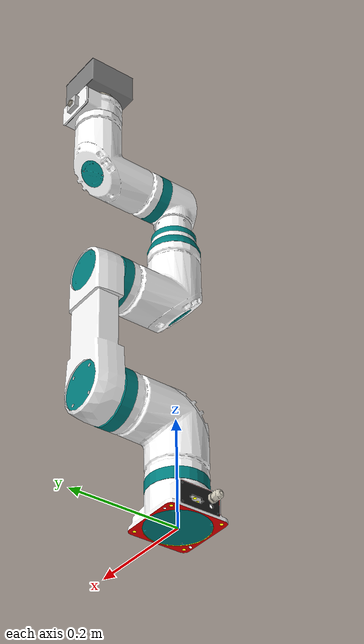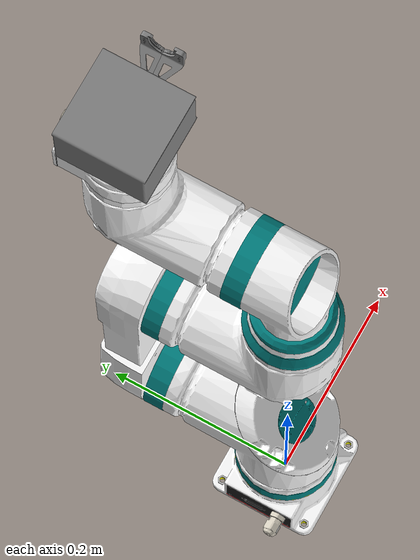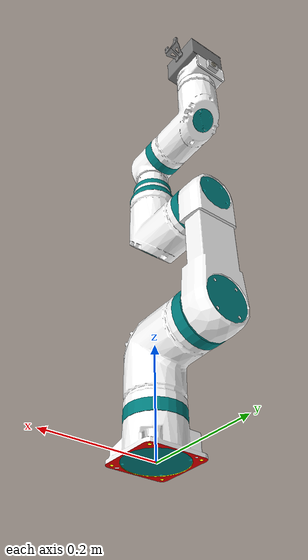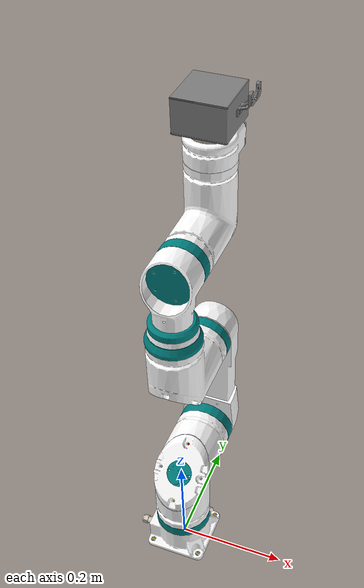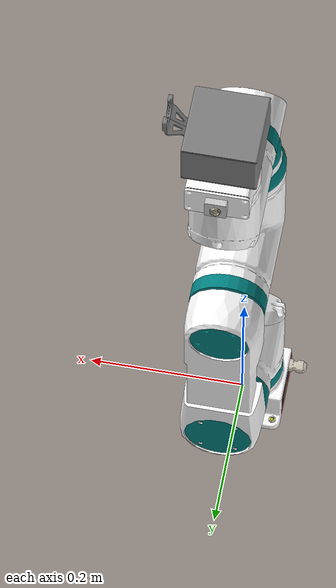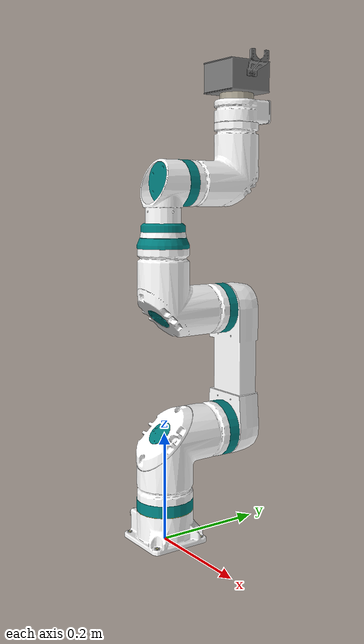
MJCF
<!-- DEPRECATED. USE A3C_GPT.XML INSTEAD -->
<mujoco model="robot_arm">
  <default>
    <default class="visual">
      <geom type="mesh" mass="0" group="2" contype="0" conaffinity="0"/>
    </default>
    <default class="collision">
      <geom group="3" type="mesh" condim="6" friction="1 5e-3 5e-4" solref=".01 1"/>
    </default>
  </default>

  <asset>
    <!-- All materials -->
    <material name="DEFAULT_MTL.001" specular="0.0" shininess="0.25" rgba="0.800000 0.800000 0.800000 1.000000"/>
    <material name="MTL0.005" specular="0.0" shininess="0.25" rgba="1.000000 1.000000 0.000000 1.000000"/>
    <material name="MTL1.003" specular="0.0" shininess="0.25" rgba="1.000000 1.000000 1.000000 1.000000"/>
    <material name="MTL2.002" specular="0.0" shininess="0.25" rgba="1.000000 0.000000 0.000000 1.000000"/>
    <material name="MTL3.001" specular="0.0" shininess="0.25" rgba="0.000000 0.502000 0.502000 1.000000"/>
    <material name="MTL4.001" specular="0.0" shininess="0.25" rgba="0.110000 0.110000 0.110000 1.000000"/>
    <material name="MTL5.001" specular="0.0" shininess="0.25" rgba="0.843000 0.816000 0.753000 1.000000"/>

    <material name="MTL0.006" specular="0.0" shininess="0.25" rgba="1.000000 1.000000 1.000000 1.000000"/>
    <material name="MTL0.007" specular="0.0" shininess="0.25" rgba="0.000000 0.502000 0.502000 1.000000"/>
    <material name="MTL0.008" specular="0.0" shininess="0.25" rgba="0.000000 0.502000 0.502000 1.000000"/>
    <material name="MTL0.009" specular="0.0" shininess="0.25" rgba="0.000000 0.502000 0.502000 1.000000"/>
    <material name="MTL1.002" specular="0.0" shininess="0.25" rgba="1.000000 1.000000 1.000000 1.000000"/>
    <material name="MTL2.001" specular="0.0" shininess="0.25" rgba="1.000000 0.000000 0.000000 1.000000"/>
    <material name="Material.002" specular="0.0" shininess="0.25" rgba="0.800000 0.800000 0.800000 1.000000"/>

    <material name="DEFAULT_MTL" specular="0.0" shininess="0.25" rgba="0.800000 0.800000 0.800000 1.000000"/>
    <material name="MTL0.010" specular="0.0" shininess="0.25" rgba="1.000000 1.000000 1.000000 1.000000"/>
    <material name="MTL1.004" specular="0.0" shininess="0.25" rgba="0.000000 0.502000 0.502000 1.000000"/>

    <material name="MTL0" specular="0.0" shininess="0.25" rgba="1.000000 1.000000 1.000000 1.000000"/>
    <material name="MTL0.011" specular="0.0" shininess="0.25" rgba="0.000000 0.502000 0.502000 1.000000"/>
    <material name="MTL0.012" specular="0.0" shininess="0.25" rgba="0.000000 0.502000 0.502000 1.000000"/>
    <material name="MTL1" specular="0.0" shininess="0.25" rgba="0.000000 0.502000 0.502000 1.000000"/>

    <material name="MTL0.013" specular="0.0" shininess="0.25" rgba="1.000000 1.000000 1.000000 1.000000"/>
    <material name="MTL1.005" specular="0.0" shininess="0.25" rgba="0.000000 0.502000 0.502000 1.000000"/>

    <material name="MTL0.014" specular="0.0" shininess="0.25" rgba="0.000000 0.502000 0.502000 1.000000"/>
    <material name="MTL0.015" specular="0.0" shininess="0.25" rgba="1.000000 1.000000 1.000000 1.000000"/>
    <material name="MTL1.006" specular="0.0" shininess="0.25" rgba="0.000000 0.502000 0.502000 1.000000"/>

    <material name="DEFAULT_MTL.002" specular="0.0" shininess="0.25" rgba="0.800000 0.800000 0.800000 1.000000"/>
    <material name="MTL0.016" specular="0.0" shininess="0.25" rgba="1.000000 1.000000 1.000000 1.000000"/>
    <material name="MTL1.007" specular="0.0" shininess="0.25" rgba="0.098000 0.098000 0.098000 1.000000"/>
    <material name="MTL10" specular="0.0" shininess="0.25" rgba="0.843000 0.816000 0.753000 1.000000"/>
    <material name="MTL11" specular="0.0" shininess="0.25" rgba="0.251000 0.251000 0.251000 1.000000"/>
    <material name="MTL12" specular="0.0" shininess="0.25" rgba="0.827000 0.329000 0.071000 1.000000"/>
    <material name="MTL13" specular="0.0" shininess="0.25" rgba="0.017000 0.018000 0.019000 1.000000"/>
    <material name="MTL2.003" specular="0.0" shininess="0.25" rgba="0.784000 0.686000 0.510000 1.000000"/>
    <material name="MTL3" specular="0.0" shininess="0.25" rgba="0.691000 0.664000 0.598000 1.000000"/>
    <material name="MTL4" specular="0.0" shininess="0.25" rgba="0.060000 0.400000 0.060000 1.000000"/>
    <material name="MTL5" specular="0.0" shininess="0.25" rgba="0.157000 0.157000 0.157000 1.000000"/>
    <material name="MTL6" specular="0.0" shininess="0.25" rgba="0.725000 0.725000 0.725000 1.000000"/>
    <material name="MTL7" specular="0.0" shininess="0.25" rgba="0.459000 0.345000 0.176000 1.000000"/>
    <material name="MTL8" specular="0.0" shininess="0.25" rgba="0.502000 0.502000 0.502000 1.000000"/>
    <material name="MTL9" specular="0.0" shininess="0.25" rgba="1.000000 1.000000 0.000000 1.000000"/>

    <!-- Meshes for all links -->
    <mesh file="meshes/visual/base_link/base_link_0.obj"/>
    <mesh file="meshes/visual/base_link/base_link_1.obj"/>
    <mesh file="meshes/visual/base_link/base_link_2.obj"/>
    <mesh file="meshes/visual/base_link/base_link_3.obj"/>
    <mesh file="meshes/visual/base_link/base_link_4.obj"/>
    <mesh file="meshes/visual/base_link/base_link_5.obj"/>
    <mesh file="meshes/visual/base_link/base_link_6.obj"/>

    <mesh file="meshes/visual/l1/l1_0.obj"/>
    <mesh file="meshes/visual/l1/l1_1.obj"/>
    <mesh file="meshes/visual/l1/l1_2.obj"/>
    <mesh file="meshes/visual/l1/l1_3.obj"/>
    <mesh file="meshes/visual/l1/l1_4.obj"/>
    <mesh file="meshes/visual/l1/l1_5.obj"/>
    <mesh file="meshes/visual/l1/l1_6.obj"/>

    <mesh file="meshes/visual/l2/l2_0.obj"/>
    <mesh file="meshes/visual/l2/l2_1.obj"/>
    <mesh file="meshes/visual/l2/l2_2.obj"/>

    <mesh file="meshes/visual/l3/l3_0.obj"/>
    <mesh file="meshes/visual/l3/l3_1.obj"/>
    <mesh file="meshes/visual/l3/l3_2.obj"/>
    <mesh file="meshes/visual/l3/l3_3.obj"/>

    <mesh file="meshes/visual/l4/l4_0.obj"/>
    <mesh file="meshes/visual/l4/l4_1.obj"/>

    <mesh file="meshes/visual/l5/l5_0.obj"/>
    <mesh file="meshes/visual/l5/l5_1.obj"/>
    <mesh file="meshes/visual/l5/l5_2.obj"/>

    <mesh file="meshes/visual/l6/l6_0.obj"/>
    <mesh file="meshes/visual/l6/l6_1.obj"/>
    <mesh file="meshes/visual/l6/l6_2.obj"/>
    <mesh file="meshes/visual/l6/l6_3.obj"/>
    <mesh file="meshes/visual/l6/l6_4.obj"/>
    <mesh file="meshes/visual/l6/l6_5.obj"/>
    <mesh file="meshes/visual/l6/l6_6.obj"/>
    <mesh file="meshes/visual/l6/l6_7.obj"/>
    <mesh file="meshes/visual/l6/l6_8.obj"/>
    <mesh file="meshes/visual/l6/l6_9.obj"/>
    <mesh file="meshes/visual/l6/l6_10.obj"/>
    <mesh file="meshes/visual/l6/l6_11.obj"/>
    <mesh file="meshes/visual/l6/l6_12.obj"/>
    <mesh file="meshes/visual/l6/l6_13.obj"/>
    <mesh file="meshes/visual/l6/l6_14.obj"/>

    <mesh file="meshes/visual/cover/cover.obj"/>

    <mesh file="meshes/visual/finger1/finger1.obj"/>

    <mesh file="meshes/visual/finger2/finger2.obj"/>

  </asset>

  <worldbody>
    <body name="base_link" euler="90 0 0">
      <!-- base_link geoms -->
      <inertial pos="0 0 0" mass="0.1" diaginertia="0.03 0.03 0.03"/>
      <geom mesh="base_link_0" material="DEFAULT_MTL.001" class="visual"/>
      <geom mesh="base_link_1" material="MTL5.001" class="visual"/>
      <geom mesh="base_link_2" material="MTL4.001" class="visual"/>
      <geom mesh="base_link_3" material="MTL3.001" class="visual"/>
      <geom mesh="base_link_4" material="MTL2.002" class="visual"/>
      <geom mesh="base_link_5" material="MTL1.003" class="visual"/>
      <geom mesh="base_link_6" material="MTL0.005" class="visual"/>
      <geom mesh="base_link_0" class="collision"/>
      <geom mesh="base_link_1" class="collision"/>
      <geom mesh="base_link_2" class="collision"/>
      <geom mesh="base_link_3" class="collision"/>
      <geom mesh="base_link_4" class="collision"/>
      <geom mesh="base_link_5" class="collision"/>
      <geom mesh="base_link_6" class="collision"/>

      <body name="l1" pos="0 0.1915 0" euler="0 0 0" gravcomp="1">
        <joint name="base_l1_joint" type="hinge" axis="0 1 0" range="-180 180" damping="100" stiffness="1000"/>
        <inertial pos="0.00000463 0.04597 0" mass="5.1" diaginertia="0.003049855 0.0018651954 0.001865195" />
        <!-- l1 geoms -->
        <geom mesh="l1_0" material="MTL0.009" class="visual"/>
        <geom mesh="l1_1" material="MTL0.008" class="visual"/>
        <geom mesh="l1_2" material="MTL0.007" class="visual"/>
        <geom mesh="l1_3" material="MTL2.001" class="visual"/>
        <geom mesh="l1_4" material="MTL1.002" class="visual"/>
        <geom mesh="l1_5" material="Material.002" class="visual"/>
        <geom mesh="l1_6" material="MTL0.006" class="visual"/>
        <geom mesh="l1_0" class="collision"/>
        <geom mesh="l1_1" class="collision"/>
        <geom mesh="l1_2" class="collision"/>
        <geom mesh="l1_3" class="collision"/>
        <geom mesh="l1_4" class="collision"/>
        <geom mesh="l1_5" class="collision"/>
        <geom mesh="l1_6" class="collision"/>

        <body name="l2" pos="0 0 -0.1405" euler="-90 -90 0" gravcomp="1">
          <joint name="l1_l2_joint" type="hinge" axis="0 1 0" range="-180 180" damping="100" stiffness="1000"/>
          <inertial pos="0.1104 0 0.01661" mass="1.36" diaginertia="0.00165864 0.013069 0.014101"/>
          <!-- l2 geoms -->
          <geom mesh="l2_0" material="DEFAULT_MTL" class="visual"/>
          <geom mesh="l2_1" material="MTL1.004" class="visual"/>
          <geom mesh="l2_2" material="MTL0.010" class="visual"/>
          <geom mesh="l2_0" class="collision"/>
          <geom mesh="l2_1" class="collision"/>
          <geom mesh="l2_2" class="collision"/>

          <body name="l3" pos="0.230 -0.1415 0" euler="0 0 0" gravcomp="1">
            <joint name="l2_l3_joint" type="hinge" axis="0 1 0" range="-180 180" damping="100" stiffness="1000"/>
            <inertial pos="0.00007798 -0.03574 0" mass="3.319" diaginertia="0.017921 0.011307 0.010111"/>
            <!-- l3 geoms -->
            <geom mesh="l3_0" material="MTL1" class="visual"/>
      	    <geom mesh="l3_1" material="MTL0" class="visual"/>
   	        <geom mesh="l3_2" material="MTL0.012" class="visual"/>
    	      <geom mesh="l3_3" material="MTL0.011" class="visual"/>
            <geom mesh="l3_0" class="collision"/>
            <geom mesh="l3_1" class="collision"/>
      	    <geom mesh="l3_2" class="collision"/>
	          <geom mesh="l3_3" class="collision"/>

            <body name="l4" pos="0.230 0 0" euler="90 0 -90" gravcomp="1">
              <joint name="l3_l4_joint" type="hinge" axis="0 1 0" range="-180 180" damping="100" stiffness="1000"/>
              <inertial pos="-0.0000176 -0.005787 -0.04962" mass="0.508" diaginertia="0.0010416 0.001147 0.000490056"/>
              <!-- l4 geoms -->
              <geom mesh="l4_0" material="MTL1.005" class="visual"/>
	            <geom mesh="l4_1" material="MTL0.013" class="visual"/>
	            <geom mesh="l4_0" class="collision"/>
	            <geom mesh="l4_1" class="collision"/>

              <body name="l5" pos="0 0 -0.1625" euler="-90 0 0" gravcomp="1">
                <joint name="l4_l5_joint" type="hinge" axis="0 1 0" range="-180 180" damping="100" stiffness="1000"/>
                <inertial pos="0.000000127 -0.04124 0" mass="2.49617" diaginertia="0.001 0.001 0.001"/>
                <!-- l5 geoms -->
                <geom mesh="l5_0" material="MTL1.006" class="visual"/>
		            <geom mesh="l5_1" material="MTL0.015" class="visual"/>
      		      <geom mesh="l5_2" material="MTL0.014" class="visual"/>
                <geom mesh="l5_0" class="collision"/>
                <geom mesh="l5_1" class="collision"/>
                <geom mesh="l5_2" class="collision"/>

                <body name="l6" pos="0 0 0.165" euler="90 90 0" gravcomp="1">
                  <joint name="l5_l6_joint" type="hinge" axis="0 1 0" range="-180 180" damping="100" stiffness="1000"/>
                  <inertial pos="0.000214 -0.00486 0.2902" mass="0.5" diaginertia="0.000352796 0.000341516 0.000518422"/>
                  <!-- l6 geoms -->
                  <geom mesh="l6_0" material="MTL13" class="visual"/>
                  <geom mesh="l6_1" material="MTL12" class="visual"/>
                  <geom mesh="l6_2" material="MTL11" class="visual"/>
                  <geom mesh="l6_3" material="MTL10" class="visual"/>
                  <geom mesh="l6_4" material="MTL9" class="visual"/>
                  <geom mesh="l6_5" material="MTL8" class="visual"/>
                  <geom mesh="l6_6" material="MTL7" class="visual"/>
                  <geom mesh="l6_7" material="MTL6" class="visual"/>
                  <geom mesh="l6_8" material="MTL5" class="visual"/>
                  <geom mesh="l6_9" material="MTL4" class="visual"/>
                  <geom mesh="l6_10" material="MTL3" class="visual"/>
                  <geom mesh="l6_11" material="MTL2.003" class="visual"/>
                  <geom mesh="l6_12" material="MTL1.007" class="visual"/>
                  <geom mesh="l6_13" material="DEFAULT_MTL.002" class="visual"/>
                  <geom mesh="l6_14" material="MTL0.016" class="visual"/>
                  <geom mesh="l6_0" class="collision"/>
                  <geom mesh="l6_1" class="collision"/>
                  <geom mesh="l6_2" class="collision"/>
                  <geom mesh="l6_3" class="collision"/>
                  <geom mesh="l6_4" class="collision"/>
                  <geom mesh="l6_5" class="collision"/>
                  <geom mesh="l6_6" class="collision"/>
                  <geom mesh="l6_7" class="collision"/>
                  <geom mesh="l6_8" class="collision"/>
                  <geom mesh="l6_9" class="collision"/>
                  <geom mesh="l6_10" class="collision"/>
                  <geom mesh="l6_11" class="collision"/>
                  <geom mesh="l6_12" class="collision"/>
                  <geom mesh="l6_13" class="collision"/>
                  <geom mesh="l6_14" class="collision"/>

                  <body name="cover" pos="0 0 0" euler="0 0 0" gravcomp="1" >
                    <site name="attachment_site" rgba="1 0 0 1" size="0.01" group="1"/>
                    <joint name="l6_cover" type="hinge" axis="0 1 0" range="-180 180" damping="100" stiffness="1000"/>
                    <geom mesh="cover" class="visual" />
                    <geom mesh="cover" class="collision" />

                    <body name="finger1" pos="0 0.03 0.0425" euler="-90 0 90" gravcomp="1">
                      <joint name="cover_finger1" type="slide" axis="0 1 0" range="0 0.02" damping="100" stiffness="1000"/>
                      <geom mesh="finger1" class="visual"/>
                      <geom mesh="finger1" class="collision"/>
                    </body>

                    <body name="finger2" pos="0 0.03 0.0425" euler="-90 0 90" gravcomp="1">
                      <joint name="cover_finger2" type="slide" axis="0 1 0" range="-0.02 0" damping="100" stiffness="1000"/>
                      <geom mesh="finger2" class="visual"/>
                      <geom mesh="finger2" class="collision"/>
                    </body>
                  </body>
                </body>
              </body>
            </body>
          </body>
        </body>
      </body>
    </body>
  </worldbody>

  <actuator>
    <motor joint="base_l1_joint" gear="100" ctrlrange="-31.4 31.4"/>
    <motor joint="l1_l2_joint" gear="100" ctrlrange="-31.4 31.4"/>
    <motor joint="l2_l3_joint" gear="100" ctrlrange="-31.4 31.4"/>
    <motor joint="l3_l4_joint" gear="100" ctrlrange="-31.4 31.4"/>
    <motor joint="l4_l5_joint" gear="100" ctrlrange="-31.4 31.4"/>
    <motor joint="l5_l6_joint" gear="100" ctrlrange="-31.4 31.4"/>
    <motor joint="l6_cover" gear="100" ctrlrange="-31.4 31.4"/>
    <motor joint="cover_finger1" gear="100" ctrlrange="0 0.35"/>
    <motor joint="cover_finger2" gear="100" ctrlrange="-0.35 0"/>
  </actuator>

  <keyframe>
    <key name="home" qpos="0 0 0 0 0 0 0 0 0"/>
  </keyframe>
</mujoco>
